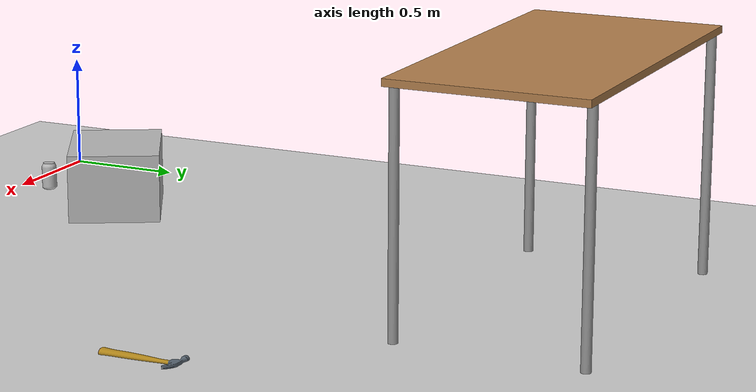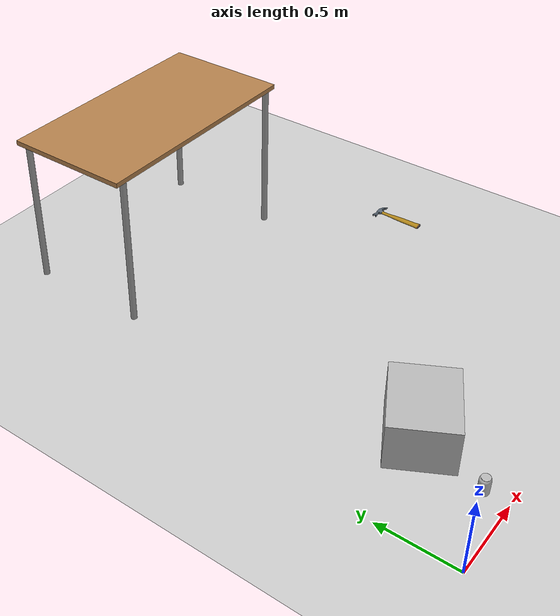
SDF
<sdf version="1.7">
 <world name="default">
  <plugin name="gz::sim::systems::Physics" filename="gz-sim-physics-system"/>
  <plugin name="gz::sim::systems::UserCommands" filename="gz-sim-user-commands-system"/>
  <plugin name="gz::sim::systems::SceneBroadcaster" filename="gz-sim-scene-broadcaster-system"/>
  <plugin name="gz::sim::systems::Sensors" filename="gz-sim-sensors-system">
   <render_engine>ogre2</render_engine>
  </plugin>
  <gravity>0 0 -9.8</gravity>
  <light name="Sun" type="directional">
   <pose>0 0 10 0 -0 0</pose>
   <diffuse>0.8 0.8 0.8 1</diffuse>
   <specular>0.2 0.2 0.2 1</specular>
   <attenuation>
    <range>1000</range>
    <constant>0.9</constant>
    <linear>0.01</linear>
    <quadratic>0.001</quadratic>
   </attenuation>
   <direction>-0.5 0.1 -0.9</direction>
   <spot><inner_angle>0</inner_angle><outer_angle>0</outer_angle><falloff>0</falloff></spot>
  </light>
  <model name="Ground Plane">
   <static>1</static>
   <link name="link">
    <collision name="collision">
     <geometry><plane><normal>0 0 1</normal><size>100 100</size></plane></geometry>
     <surface>
      <contact><collide_bitmask>65535</collide_bitmask></contact>
      <friction><ode><mu>100</mu><mu2>50</mu2></ode></friction>
     </surface>
    </collision>
    <visual name="visual">
     <cast_shadows>0</cast_shadows>
     <geometry><plane><normal>0 0 1</normal><size>100 100</size></plane></geometry>
     <material>
      <script><uri>file://media/materials/scripts/gazebo.material</uri><name>Gazebo/Grey</name></script>
     </material>
    </visual>
   </link>
  </model>
  <model name="cardboard_box">
   <pose>0.65 0.6 0.149 0 -0 0.5</pose>
   <link name="link">
    <inertial>
     <mass>2</mass>
     <inertia>
      <ixx>0.0416667</ixx>
      <ixy>0</ixy>
      <ixz>0</ixz>
      <iyy>0.0566667</iyy>
      <iyz>0</iyz>
      <izz>0.0683333</izz>
     </inertia>
    </inertial>
    <collision name="collision">
     <geometry><box><size>0.5 0.4 0.3</size></box></geometry>
     <surface>
      <friction><ode><mu>1</mu><mu2>1</mu2></ode></friction>
      <contact><ode><kp>1e+07</kp><kd>1</kd><min_depth>0.001</min_depth><max_vel>0.1</max_vel></ode></contact>
     </surface>
    </collision>
    <visual name="visual">
     <pose>0 0 -0.15 0 -0 0</pose>
     <geometry>
      <mesh><uri>model://cardboard_box/meshes/cardboard_box.dae</uri><scale>1.25932 1.00745 0.755591</scale></mesh>
     </geometry>
    </visual>
   </link>
  </model>
  <model name="coke_can">
   <link name="link">
    <inertial>
     <pose>0 0 0.06 0 -0 0</pose>
     <mass>0.39</mass>
     <inertia>
      <ixx>0.00055575</ixx>
      <ixy>0</ixy>
      <ixz>0</ixz>
      <iyy>0.00055575</iyy>
      <iyz>0</iyz>
      <izz>0.0001755</izz>
     </inertia>
    </inertial>
    <collision name="collision">
     <pose>0.003937 0.004724 -0.18 0 -0 0</pose>
     <geometry><mesh><uri>model://coke_can/meshes/coke_can.dae</uri></mesh></geometry>
     <surface>
      <friction><ode><mu>1</mu><mu2>1</mu2></ode></friction>
      <contact><ode><kp>1e+07</kp><kd>1</kd><min_depth>0.001</min_depth><max_vel>0.1</max_vel></ode></contact>
     </surface>
    </collision>
    <visual name="visual">
     <pose>0.003937 0.004724 -0.18 0 -0 0</pose>
     <geometry><mesh><uri>model://coke_can/meshes/coke_can.dae</uri></mesh></geometry>
    </visual>
   </link>
   <pose>0.500068 0.150042 -0.002719 -0.051733 0.000428 2.30558</pose>
  </model>
  <scene><shadows>0</shadows><ambient>0.4 0.4 0.4 1</ambient><background>0.7 0.7 0.7 1</background></scene>
  <magnetic_field>6e-06 2.3e-05 -4.2e-05</magnetic_field>
  <atmosphere type="adiabatic"/>
  <physics type="ode">
   <max_step_size>0.001</max_step_size>
   <real_time_factor>1</real_time_factor>
   <real_time_update_rate>1000</real_time_update_rate>
  </physics>
  <audio><device>default</device></audio>
  <spherical_coordinates>
   <surface_model>EARTH_WGS84</surface_model>
   <latitude_deg>0</latitude_deg>
   <longitude_deg>0</longitude_deg>
   <elevation>0</elevation>
   <heading_deg>0</heading_deg>
  </spherical_coordinates>
  <model name="table">
   <static>1</static>
   <link name="link">
    <collision name="surface">
     <pose>0 0 1 0 -0 0</pose>
     <geometry><box><size>1.5 0.8 0.03</size></box></geometry>
     <surface><friction><ode><mu>0.6</mu><mu2>0.6</mu2></ode></friction></surface>
    </collision>
    <visual name="visual1">
     <pose>0 0 1 0 -0 0</pose>
     <geometry><box><size>1.5 0.8 0.03</size></box></geometry>
     <material>
      <script><uri>file://media/materials/scripts/gazebo.material</uri><name>Gazebo/Wood</name></script>
     </material>
    </visual>
    <collision name="front_left_leg">
     <pose>0.68 0.38 0.5 0 -0 0</pose>
     <geometry><cylinder><radius>0.02</radius><length>1</length></cylinder></geometry>
    </collision>
    <visual name="front_left_leg">
     <pose>0.68 0.38 0.5 0 -0 0</pose>
     <geometry><cylinder><radius>0.02</radius><length>1</length></cylinder></geometry>
     <material>
      <script><uri>file://media/materials/scripts/gazebo.material</uri><name>Gazebo/Grey</name></script>
     </material>
    </visual>
    <collision name="front_right_leg">
     <pose>0.68 -0.38 0.5 0 -0 0</pose>
     <geometry><cylinder><radius>0.02</radius><length>1</length></cylinder></geometry>
    </collision>
    <visual name="front_right_leg">
     <pose>0.68 -0.38 0.5 0 -0 0</pose>
     <geometry><cylinder><radius>0.02</radius><length>1</length></cylinder></geometry>
     <material>
      <script><uri>file://media/materials/scripts/gazebo.material</uri><name>Gazebo/Grey</name></script>
     </material>
    </visual>
    <collision name="back_right_leg">
     <pose>-0.68 -0.38 0.5 0 -0 0</pose>
     <geometry><cylinder><radius>0.02</radius><length>1</length></cylinder></geometry>
    </collision>
    <visual name="back_right_leg">
     <pose>-0.68 -0.38 0.5 0 -0 0</pose>
     <geometry><cylinder><radius>0.02</radius><length>1</length></cylinder></geometry>
     <material>
      <script><uri>file://media/materials/scripts/gazebo.material</uri><name>Gazebo/Grey</name></script>
     </material>
    </visual>
    <collision name="back_left_leg">
     <pose>-0.68 0.38 0.5 0 -0 0</pose>
     <geometry><cylinder><radius>0.02</radius><length>1</length></cylinder></geometry>
    </collision>
    <visual name="back_left_leg">
     <pose>-0.68 0.38 0.5 0 -0 0</pose>
     <geometry><cylinder><radius>0.02</radius><length>1</length></cylinder></geometry>
     <material>
      <script><uri>file://media/materials/scripts/gazebo.material</uri><name>Gazebo/Grey</name></script>
     </material>
    </visual>
   </link>
   <pose>1.16287 2.8915 0 0 -0 0</pose>
  </model>
  <model name="hammer">
   <static>1</static>
   <link name="link">
    <collision name="collision">
     <geometry><mesh><uri>model://hammer/meshes/hammer.dae</uri></mesh></geometry>
    </collision>
    <visual name="visual"><geometry><mesh><uri>model://hammer/meshes/hammer.dae</uri></mesh></geometry></visual>
   </link>
   <pose>2.39163 1.82721 0 0 -0 0</pose>
  </model>
 </world>
</sdf>
